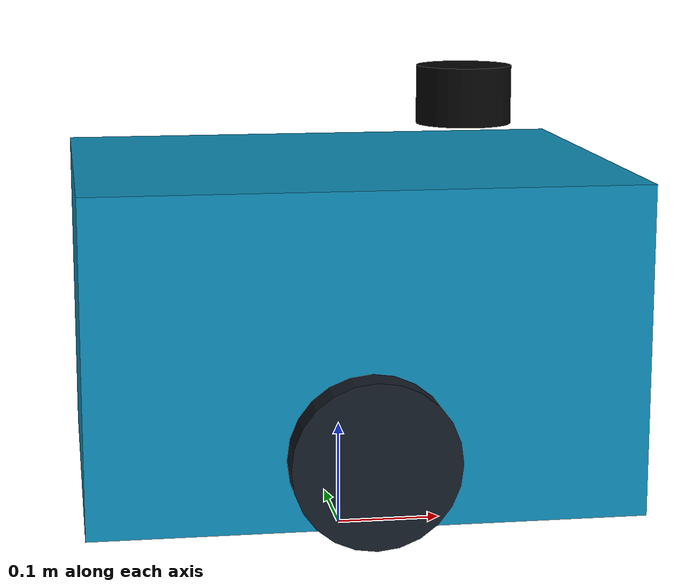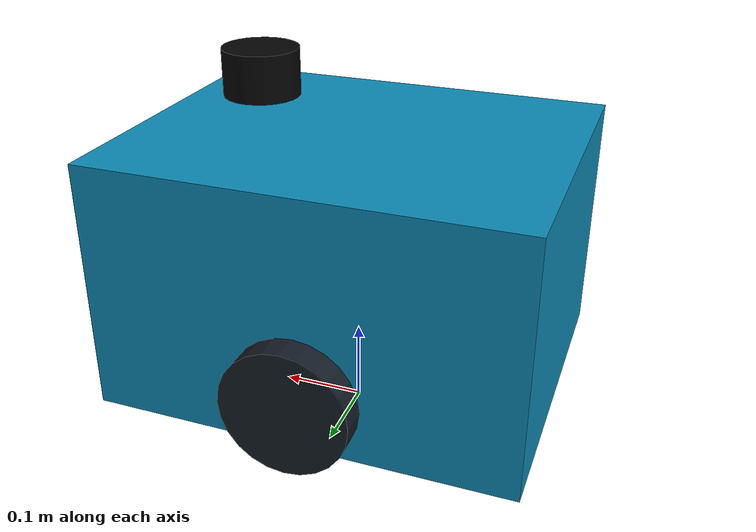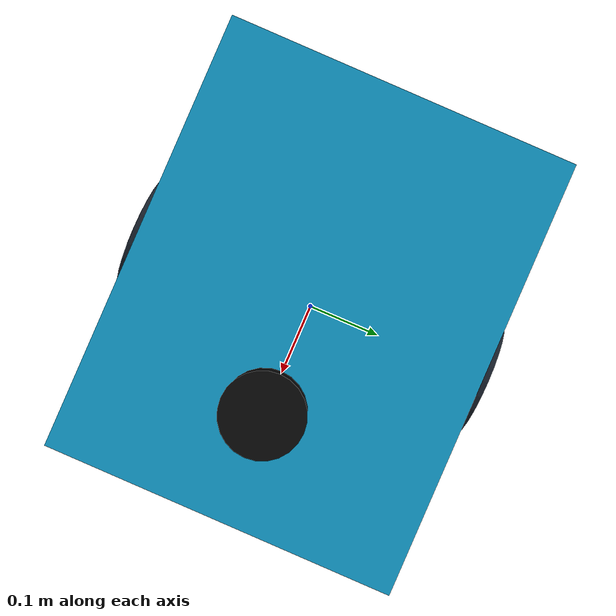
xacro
<?xml version="1.0"?>
<robot xmlns:xacro="http://www.ros.org/wiki/xacro" name="libot">
  <xacro:include filename="$(find libot_description)/urdf/libot_core.xacro"/>
  <xacro:include filename="$(find libot_description)/urdf/libot_gazebo.xacro"/>
  <xacro:libot_core/>
  <xacro:libot_gazebo/>
</robot>

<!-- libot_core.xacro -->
<robot xmlns:xacro="http://www.ros.org/wiki/xacro">
  <xacro:macro name="box_inertia" params="mass x y z">
    <inertia ixx="${mass * (y*y + z*z) / 12.0}" ixy="0" ixz="0"
             iyy="${mass * (x*x + z*z) / 12.0}" iyz="0"
             izz="${mass * (x*x + y*y) / 12.0}"/>
  </xacro:macro>

  <xacro:macro name="libot_core">
    <material name="libot_blue"><color rgba="0.05 0.55 0.72 1"/></material>
    <material name="libot_dark"><color rgba="0.08 0.11 0.15 1"/></material>
    <material name="lidar_black"><color rgba="0.02 0.02 0.02 1"/></material>

    <link name="base_footprint"/>
    <link name="base_link">
      <visual><origin xyz="0 0 0.16"/><geometry><box size="0.50 0.40 0.30"/></geometry><material name="libot_blue"/></visual>
      <collision><origin xyz="0 0 0.16"/><geometry><box size="0.50 0.40 0.30"/></geometry></collision>
      <inertial><origin xyz="0 0 0.16"/><mass value="18"/><xacro:box_inertia mass="18" x="0.50" y="0.40" z="0.30"/></inertial>
    </link>
    <joint name="base_footprint_to_base_link" type="fixed"><parent link="base_footprint"/><child link="base_link"/><origin xyz="0 0 0.05"/></joint>

    <xacro:macro name="wheel" params="side sign">
      <link name="${side}_wheel_link">
        <visual><geometry><cylinder radius="0.075" length="0.035"/></geometry><material name="libot_dark"/></visual>
        <collision><geometry><cylinder radius="0.075" length="0.035"/></geometry></collision>
        <inertial><mass value="0.5"/><inertia ixx="0.001" ixy="0" ixz="0" iyy="0.001" iyz="0" izz="0.0014"/></inertial>
      </link>
      <joint name="${side}_wheel_joint" type="continuous"><parent link="base_link"/><child link="${side}_wheel_link"/><origin xyz="0 ${sign * 0.215} 0.075" rpy="1.5708 0 0"/><axis xyz="0 0 1"/></joint>
    </xacro:macro>
    <xacro:wheel side="left" sign="1"/>
    <xacro:wheel side="right" sign="-1"/>

    <link name="caster_link">
      <visual><geometry><sphere radius="0.035"/></geometry><material name="libot_dark"/></visual>
      <collision><geometry><sphere radius="0.035"/></geometry></collision>
      <inertial><mass value="0.1"/><inertia ixx="0.0001" ixy="0" ixz="0" iyy="0.0001" iyz="0" izz="0.0001"/></inertial>
    </link>
    <joint name="caster_joint" type="fixed"><parent link="base_link"/><child link="caster_link"/><origin xyz="-0.18 0 0.035"/></joint>

    <link name="laser">
      <visual><geometry><cylinder radius="0.045" length="0.055"/></geometry><material name="lidar_black"/></visual>
      <collision><geometry><cylinder radius="0.045" length="0.055"/></geometry></collision>
      <inertial><mass value="0.15"/><inertia ixx="0.00015" ixy="0" ixz="0" iyy="0.00015" iyz="0" izz="0.00015"/></inertial>
    </link>
    <joint name="base_link_to_laser" type="fixed"><parent link="base_link"/><child link="laser"/><origin xyz="0.12 0 0.37"/></joint>
  </xacro:macro>
</robot>
